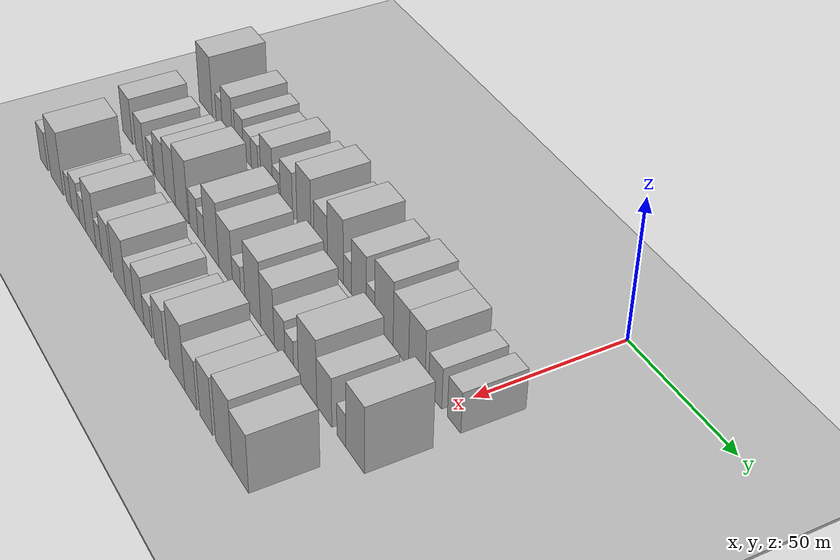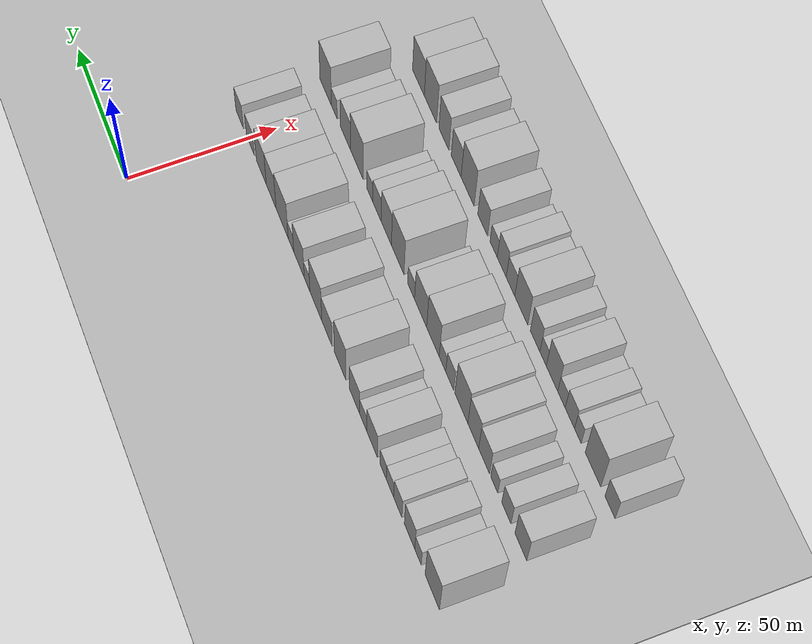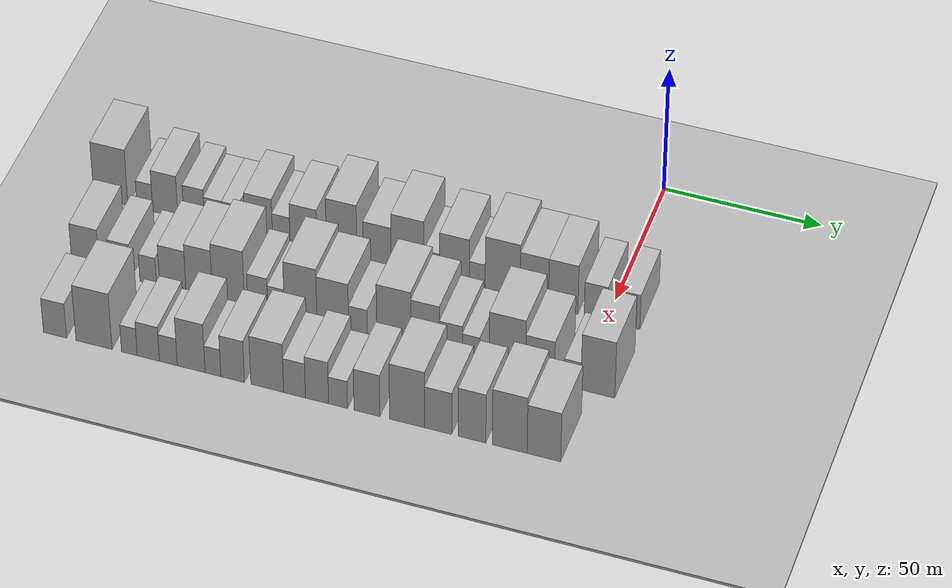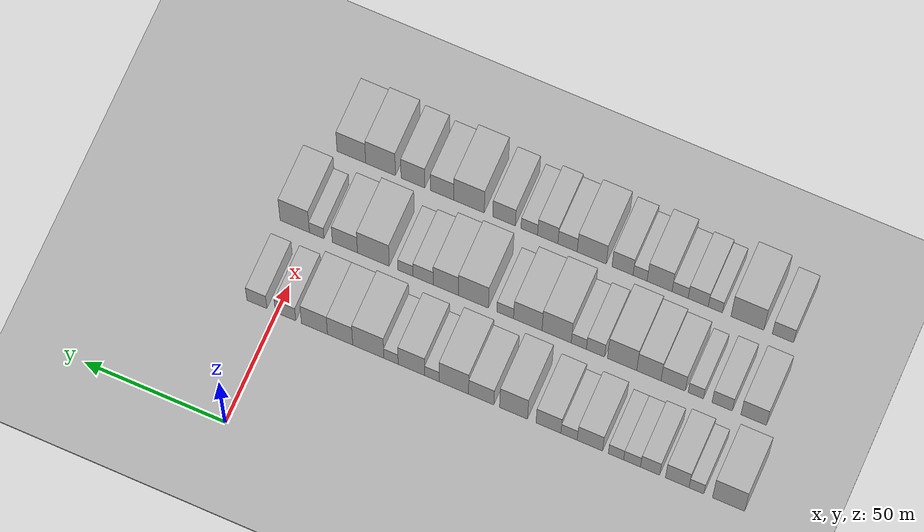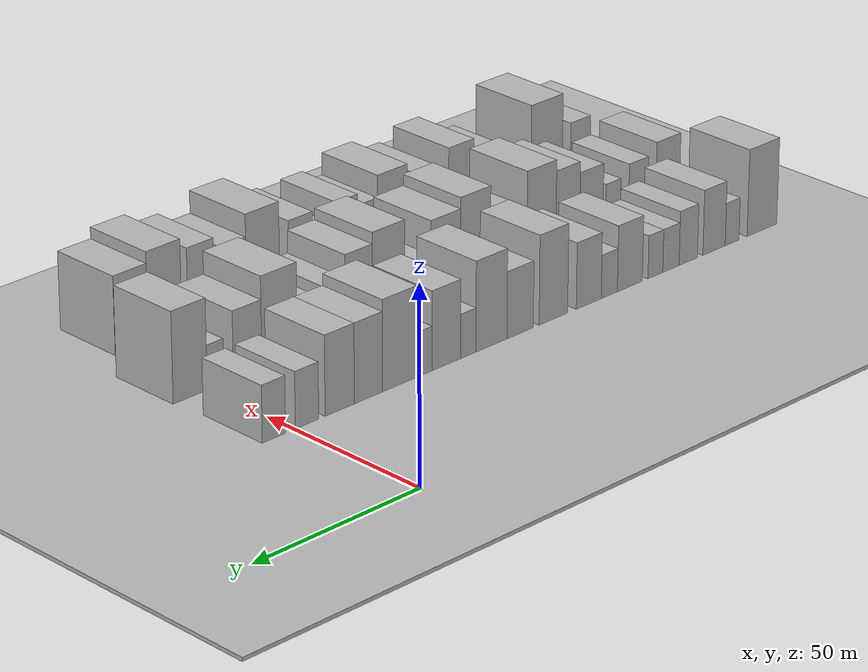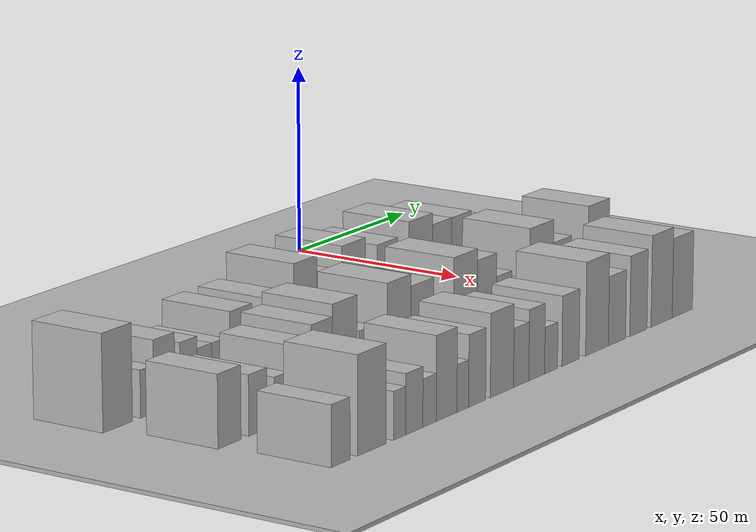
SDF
<sdf version="1.6">
 <world name="default">
  <include><name>ground_plane_1</name><uri>model://HANNAS_ground_plane</uri></include>
  <include>
   <name>ground_plane_2</name>
   <uri>model://HANNAS_ground_plane</uri>
   <pose>100 0 0  0 0 0</pose>
  </include>
  <model name="building_20">
   <static>1</static>
   <pose>50.0000 -158.7037 0 0.000000 0.000000 0.000000</pose>
   <link name="link">
    <pose>0 0 12.00 0 0 0</pose>
    <collision name="collision"><geometry><box><size>20.0000 11.1732 24.0000</size></box></geometry></collision>
    <visual name="visual">
     <cast_shadows>0</cast_shadows>
     <geometry><box><size>20.0000 11.1732 24.0000</size></box></geometry>
     <material>
      <script>
       <uri>model://HANNAS_wall/materials/scripts</uri>
       <uri>model://HANNAS_wall/materials/textures</uri>
       <name>vrc/HANNAS_wall</name>
      </script>
     </material>
    </visual>
   </link>
  </model>
  <model name="building_21">
   <static>1</static>
   <pose>50.0000 -147.5431 0 0.000000 0.000000 0.000000</pose>
   <link name="link">
    <pose>0 0 6.00 0 0 0</pose>
    <collision name="collision"><geometry><box><size>20.0000 5.1480 12.0000</size></box></geometry></collision>
    <visual name="visual">
     <cast_shadows>0</cast_shadows>
     <geometry><box><size>20.0000 5.1480 12.0000</size></box></geometry>
     <material>
      <script>
       <uri>model://HANNAS_wall/materials/scripts</uri>
       <uri>model://HANNAS_wall/materials/textures</uri>
       <name>vrc/HANNAS_wall</name>
      </script>
     </material>
    </visual>
   </link>
  </model>
  <model name="building_22">
   <static>1</static>
   <pose>50.0000 -140.8523 0 0.000000 0.000000 0.000000</pose>
   <link name="link">
    <pose>0 0 9.00 0 0 0</pose>
    <collision name="collision"><geometry><box><size>20.0000 8.2338 18.0000</size></box></geometry></collision>
    <visual name="visual">
     <cast_shadows>0</cast_shadows>
     <geometry><box><size>20.0000 8.2338 18.0000</size></box></geometry>
     <material>
      <script>
       <uri>model://HANNAS_wall/materials/scripts</uri>
       <uri>model://HANNAS_wall/materials/textures</uri>
       <name>vrc/HANNAS_wall</name>
      </script>
     </material>
    </visual>
   </link>
  </model>
  <model name="building_23">
   <static>1</static>
   <pose>50.0000 -131.4011 0 0.000000 0.000000 0.000000</pose>
   <link name="link">
    <pose>0 0 7.50 0 0 0</pose>
    <collision name="collision"><geometry><box><size>20.0000 6.6685 15.0000</size></box></geometry></collision>
    <visual name="visual">
     <cast_shadows>0</cast_shadows>
     <geometry><box><size>20.0000 6.6685 15.0000</size></box></geometry>
     <material>
      <script>
       <uri>model://HANNAS_wall/materials/scripts</uri>
       <uri>model://HANNAS_wall/materials/textures</uri>
       <name>vrc/HANNAS_wall</name>
      </script>
     </material>
    </visual>
   </link>
  </model>
  <model name="building_24">
   <static>1</static>
   <pose>50.0000 -125.1123 0 0.000000 0.000000 0.000000</pose>
   <link name="link">
    <pose>0 0 6.00 0 0 0</pose>
    <collision name="collision"><geometry><box><size>20.0000 5.9090 12.0000</size></box></geometry></collision>
    <visual name="visual">
     <cast_shadows>0</cast_shadows>
     <geometry><box><size>20.0000 5.9090 12.0000</size></box></geometry>
     <material>
      <script>
       <uri>model://HANNAS_wall/materials/scripts</uri>
       <uri>model://HANNAS_wall/materials/textures</uri>
       <name>vrc/HANNAS_wall</name>
      </script>
     </material>
    </visual>
   </link>
  </model>
  <model name="building_25">
   <static>1</static>
   <pose>50.0000 -119.4929 0 0.000000 0.000000 0.000000</pose>
   <link name="link">
    <pose>0 0 6.00 0 0 0</pose>
    <collision name="collision"><geometry><box><size>20.0000 5.3299 12.0000</size></box></geometry></collision>
    <visual name="visual">
     <cast_shadows>0</cast_shadows>
     <geometry><box><size>20.0000 5.3299 12.0000</size></box></geometry>
     <material>
      <script>
       <uri>model://HANNAS_wall/materials/scripts</uri>
       <uri>model://HANNAS_wall/materials/textures</uri>
       <name>vrc/HANNAS_wall</name>
      </script>
     </material>
    </visual>
   </link>
  </model>
  <model name="building_26">
   <static>1</static>
   <pose>50.0000 -110.3879 0 0.000000 0.000000 0.000000</pose>
   <link name="link">
    <pose>0 0 9.00 0 0 0</pose>
    <collision name="collision"><geometry><box><size>20.0000 8.8800 18.0000</size></box></geometry></collision>
    <visual name="visual">
     <cast_shadows>0</cast_shadows>
     <geometry><box><size>20.0000 8.8800 18.0000</size></box></geometry>
     <material>
      <script>
       <uri>model://HANNAS_wall/materials/scripts</uri>
       <uri>model://HANNAS_wall/materials/textures</uri>
       <name>vrc/HANNAS_wall</name>
      </script>
     </material>
    </visual>
   </link>
  </model>
  <model name="building_27">
   <static>1</static>
   <pose>50.0000 -103.1046 0 0.000000 0.000000 0.000000</pose>
   <link name="link">
    <pose>0 0 6.00 0 0 0</pose>
    <collision name="collision"><geometry><box><size>20.0000 5.6866 12.0000</size></box></geometry></collision>
    <visual name="visual">
     <cast_shadows>0</cast_shadows>
     <geometry><box><size>20.0000 5.6866 12.0000</size></box></geometry>
     <material>
      <script>
       <uri>model://HANNAS_wall/materials/scripts</uri>
       <uri>model://HANNAS_wall/materials/textures</uri>
       <name>vrc/HANNAS_wall</name>
      </script>
     </material>
    </visual>
   </link>
  </model>
  <model name="building_28">
   <static>1</static>
   <pose>50.0000 -95.8927 0 0.000000 0.000000 0.000000</pose>
   <link name="link">
    <pose>0 0 9.00 0 0 0</pose>
    <collision name="collision"><geometry><box><size>20.0000 8.7373 18.0000</size></box></geometry></collision>
    <visual name="visual">
     <cast_shadows>0</cast_shadows>
     <geometry><box><size>20.0000 8.7373 18.0000</size></box></geometry>
     <material>
      <script>
       <uri>model://HANNAS_wall/materials/scripts</uri>
       <uri>model://HANNAS_wall/materials/textures</uri>
       <name>vrc/HANNAS_wall</name>
      </script>
     </material>
    </visual>
   </link>
  </model>
  <model name="building_29">
   <static>1</static>
   <pose>50.0000 -83.6213 0 0.000000 0.000000 0.000000</pose>
   <link name="link">
    <pose>0 0 12.00 0 0 0</pose>
    <collision name="collision"><geometry><box><size>20.0000 9.8054 24.0000</size></box></geometry></collision>
    <visual name="visual">
     <cast_shadows>0</cast_shadows>
     <geometry><box><size>20.0000 9.8054 24.0000</size></box></geometry>
     <material>
      <script>
       <uri>model://HANNAS_wall/materials/scripts</uri>
       <uri>model://HANNAS_wall/materials/textures</uri>
       <name>vrc/HANNAS_wall</name>
      </script>
     </material>
    </visual>
   </link>
  </model>
  <model name="building_30">
   <static>1</static>
   <pose>50.0000 -72.2557 0 0.000000 0.000000 0.000000</pose>
   <link name="link">
    <pose>0 0 9.00 0 0 0</pose>
    <collision name="collision"><geometry><box><size>20.0000 8.9259 18.0000</size></box></geometry></collision>
    <visual name="visual">
     <cast_shadows>0</cast_shadows>
     <geometry><box><size>20.0000 8.9259 18.0000</size></box></geometry>
     <material>
      <script>
       <uri>model://HANNAS_wall/materials/scripts</uri>
       <uri>model://HANNAS_wall/materials/textures</uri>
       <name>vrc/HANNAS_wall</name>
      </script>
     </material>
    </visual>
   </link>
  </model>
  <model name="building_31">
   <static>1</static>
   <pose>50.0000 -62.6025 0 0.000000 0.000000 0.000000</pose>
   <link name="link">
    <pose>0 0 12.00 0 0 0</pose>
    <collision name="collision"><geometry><box><size>20.0000 10.3805 24.0000</size></box></geometry></collision>
    <visual name="visual">
     <cast_shadows>0</cast_shadows>
     <geometry><box><size>20.0000 10.3805 24.0000</size></box></geometry>
     <material>
      <script>
       <uri>model://HANNAS_wall/materials/scripts</uri>
       <uri>model://HANNAS_wall/materials/textures</uri>
       <name>vrc/HANNAS_wall</name>
      </script>
     </material>
    </visual>
   </link>
  </model>
  <model name="building_32">
   <static>1</static>
   <pose>50.0000 -54.8937 0 0.000000 0.000000 0.000000</pose>
   <link name="link">
    <pose>0 0 6.00 0 0 0</pose>
    <collision name="collision"><geometry><box><size>20.0000 5.0372 12.0000</size></box></geometry></collision>
    <visual name="visual">
     <cast_shadows>0</cast_shadows>
     <geometry><box><size>20.0000 5.0372 12.0000</size></box></geometry>
     <material>
      <script>
       <uri>model://HANNAS_wall/materials/scripts</uri>
       <uri>model://HANNAS_wall/materials/textures</uri>
       <name>vrc/HANNAS_wall</name>
      </script>
     </material>
    </visual>
   </link>
  </model>
  <model name="building_33">
   <static>1</static>
   <pose>50.0000 -47.6970 0 0.000000 0.000000 0.000000</pose>
   <link name="link">
    <pose>0 0 10.50 0 0 0</pose>
    <collision name="collision"><geometry><box><size>20.0000 9.3563 21.0000</size></box></geometry></collision>
    <visual name="visual">
     <cast_shadows>0</cast_shadows>
     <geometry><box><size>20.0000 9.3563 21.0000</size></box></geometry>
     <material>
      <script>
       <uri>model://HANNAS_wall/materials/scripts</uri>
       <uri>model://HANNAS_wall/materials/textures</uri>
       <name>vrc/HANNAS_wall</name>
      </script>
     </material>
    </visual>
   </link>
  </model>
  <model name="building_34">
   <static>1</static>
   <pose>50.0000 -40.5022 0 0.000000 0.000000 0.000000</pose>
   <link name="link">
    <pose>0 0 6.00 0 0 0</pose>
    <collision name="collision"><geometry><box><size>20.0000 5.0334 12.0000</size></box></geometry></collision>
    <visual name="visual">
     <cast_shadows>0</cast_shadows>
     <geometry><box><size>20.0000 5.0334 12.0000</size></box></geometry>
     <material>
      <script>
       <uri>model://HANNAS_wall/materials/scripts</uri>
       <uri>model://HANNAS_wall/materials/textures</uri>
       <name>vrc/HANNAS_wall</name>
      </script>
     </material>
    </visual>
   </link>
  </model>
  <model name="building_35">
   <static>1</static>
   <pose>50.0000 -32.4761 0 0.000000 0.000000 0.000000</pose>
   <link name="link">
    <pose>0 0 12.00 0 0 0</pose>
    <collision name="collision"><geometry><box><size>20.0000 11.0187 24.0000</size></box></geometry></collision>
    <visual name="visual">
     <cast_shadows>0</cast_shadows>
     <geometry><box><size>20.0000 11.0187 24.0000</size></box></geometry>
     <material>
      <script>
       <uri>model://HANNAS_wall/materials/scripts</uri>
       <uri>model://HANNAS_wall/materials/textures</uri>
       <name>vrc/HANNAS_wall</name>
      </script>
     </material>
    </visual>
   </link>
  </model>
  <model name="building_36">
   <static>1</static>
   <pose>50.0000 -22.5019 0 0.000000 0.000000 0.000000</pose>
   <link name="link">
    <pose>0 0 10.50 0 0 0</pose>
    <collision name="collision"><geometry><box><size>20.0000 8.9299 21.0000</size></box></geometry></collision>
    <visual name="visual">
     <cast_shadows>0</cast_shadows>
     <geometry><box><size>20.0000 8.9299 21.0000</size></box></geometry>
     <material>
      <script>
       <uri>model://HANNAS_wall/materials/scripts</uri>
       <uri>model://HANNAS_wall/materials/textures</uri>
       <name>vrc/HANNAS_wall</name>
      </script>
     </material>
    </visual>
   </link>
  </model>
  <model name="building_37">
   <static>1</static>
   <pose>50.0000 -13.4229 0 0.000000 0.000000 0.000000</pose>
   <link name="link">
    <pose>0 0 10.50 0 0 0</pose>
    <collision name="collision"><geometry><box><size>20.0000 9.2280 21.0000</size></box></geometry></collision>
    <visual name="visual">
     <cast_shadows>0</cast_shadows>
     <geometry><box><size>20.0000 9.2280 21.0000</size></box></geometry>
     <material>
      <script>
       <uri>model://HANNAS_wall/materials/scripts</uri>
       <uri>model://HANNAS_wall/materials/textures</uri>
       <name>vrc/HANNAS_wall</name>
      </script>
     </material>
    </visual>
   </link>
  </model>
  <model name="building_38">
   <static>1</static>
   <pose>50.0000 -3.1826 0 0.000000 0.000000 0.000000</pose>
   <link name="link">
    <pose>0 0 7.50 0 0 0</pose>
    <collision name="collision"><geometry><box><size>20.0000 7.2527 15.0000</size></box></geometry></collision>
    <visual name="visual">
     <cast_shadows>0</cast_shadows>
     <geometry><box><size>20.0000 7.2527 15.0000</size></box></geometry>
     <material>
      <script>
       <uri>model://HANNAS_wall/materials/scripts</uri>
       <uri>model://HANNAS_wall/materials/textures</uri>
       <name>vrc/HANNAS_wall</name>
      </script>
     </material>
    </visual>
   </link>
  </model>
  <model name="building_39">
   <static>1</static>
   <pose>50.0000 7.0037 0 0.000000 0.000000 0.000000</pose>
   <link name="link">
    <pose>0 0 7.50 0 0 0</pose>
    <collision name="collision"><geometry><box><size>20.0000 7.1198 15.0000</size></box></geometry></collision>
    <visual name="visual">
     <cast_shadows>0</cast_shadows>
     <geometry><box><size>20.0000 7.1198 15.0000</size></box></geometry>
     <material>
      <script>
       <uri>model://HANNAS_wall/materials/scripts</uri>
       <uri>model://HANNAS_wall/materials/textures</uri>
       <name>vrc/HANNAS_wall</name>
      </script>
     </material>
    </visual>
   </link>
  </model>
  <model name="building_97">
   <static>1</static>
   <pose>79.0000 -155.3173 0 0.000000 0.000000 0.000000</pose>
   <link name="link">
    <pose>0 0 9.00 0 0 0</pose>
    <collision name="collision"><geometry><box><size>20.0000 8.9202 18.0000</size></box></geometry></collision>
    <visual name="visual">
     <cast_shadows>0</cast_shadows>
     <geometry><box><size>20.0000 8.9202 18.0000</size></box></geometry>
     <material>
      <script>
       <uri>model://HANNAS_wall/materials/scripts</uri>
       <uri>model://HANNAS_wall/materials/textures</uri>
       <name>vrc/HANNAS_wall</name>
      </script>
     </material>
    </visual>
   </link>
  </model>
  <model name="building_98">
   <static>1</static>
   <pose>79.0000 -144.3145 0 0.000000 0.000000 0.000000</pose>
   <link name="link">
    <pose>0 0 7.50 0 0 0</pose>
    <collision name="collision"><geometry><box><size>20.0000 7.0855 15.0000</size></box></geometry></collision>
    <visual name="visual">
     <cast_shadows>0</cast_shadows>
     <geometry><box><size>20.0000 7.0855 15.0000</size></box></geometry>
     <material>
      <script>
       <uri>model://HANNAS_wall/materials/scripts</uri>
       <uri>model://HANNAS_wall/materials/textures</uri>
       <name>vrc/HANNAS_wall</name>
      </script>
     </material>
    </visual>
   </link>
  </model>
  <model name="building_99">
   <static>1</static>
   <pose>79.0000 -135.0802 0 0.000000 0.000000 0.000000</pose>
   <link name="link">
    <pose>0 0 6.00 0 0 0</pose>
    <collision name="collision"><geometry><box><size>20.0000 5.3830 12.0000</size></box></geometry></collision>
    <visual name="visual">
     <cast_shadows>0</cast_shadows>
     <geometry><box><size>20.0000 5.3830 12.0000</size></box></geometry>
     <material>
      <script>
       <uri>model://HANNAS_wall/materials/scripts</uri>
       <uri>model://HANNAS_wall/materials/textures</uri>
       <name>vrc/HANNAS_wall</name>
      </script>
     </material>
    </visual>
   </link>
  </model>
  <model name="building_100">
   <static>1</static>
   <pose>79.0000 -127.1526 0 0.000000 0.000000 0.000000</pose>
   <link name="link">
    <pose>0 0 9.00 0 0 0</pose>
    <collision name="collision"><geometry><box><size>20.0000 8.4723 18.0000</size></box></geometry></collision>
    <visual name="visual">
     <cast_shadows>0</cast_shadows>
     <geometry><box><size>20.0000 8.4723 18.0000</size></box></geometry>
     <material>
      <script>
       <uri>model://HANNAS_wall/materials/scripts</uri>
       <uri>model://HANNAS_wall/materials/textures</uri>
       <name>vrc/HANNAS_wall</name>
      </script>
     </material>
    </visual>
   </link>
  </model>
  <model name="building_101">
   <static>1</static>
   <pose>79.0000 -118.6565 0 0.000000 0.000000 0.000000</pose>
   <link name="link">
    <pose>0 0 10.50 0 0 0</pose>
    <collision name="collision"><geometry><box><size>20.0000 8.5198 21.0000</size></box></geometry></collision>
    <visual name="visual">
     <cast_shadows>0</cast_shadows>
     <geometry><box><size>20.0000 8.5198 21.0000</size></box></geometry>
     <material>
      <script>
       <uri>model://HANNAS_wall/materials/scripts</uri>
       <uri>model://HANNAS_wall/materials/textures</uri>
       <name>vrc/HANNAS_wall</name>
      </script>
     </material>
    </visual>
   </link>
  </model>
  <model name="building_102">
   <static>1</static>
   <pose>79.0000 -109.2549 0 0.000000 0.000000 0.000000</pose>
   <link name="link">
    <pose>0 0 12.00 0 0 0</pose>
    <collision name="collision"><geometry><box><size>20.0000 10.2833 24.0000</size></box></geometry></collision>
    <visual name="visual">
     <cast_shadows>0</cast_shadows>
     <geometry><box><size>20.0000 10.2833 24.0000</size></box></geometry>
     <material>
      <script>
       <uri>model://HANNAS_wall/materials/scripts</uri>
       <uri>model://HANNAS_wall/materials/textures</uri>
       <name>vrc/HANNAS_wall</name>
      </script>
     </material>
    </visual>
   </link>
  </model>
  <model name="building_103">
   <static>1</static>
   <pose>79.0000 -99.9209 0 0.000000 0.000000 0.000000</pose>
   <link name="link">
    <pose>0 0 7.50 0 0 0</pose>
    <collision name="collision"><geometry><box><size>20.0000 6.3848 15.0000</size></box></geometry></collision>
    <visual name="visual">
     <cast_shadows>0</cast_shadows>
     <geometry><box><size>20.0000 6.3848 15.0000</size></box></geometry>
     <material>
      <script>
       <uri>model://HANNAS_wall/materials/scripts</uri>
       <uri>model://HANNAS_wall/materials/textures</uri>
       <name>vrc/HANNAS_wall</name>
      </script>
     </material>
    </visual>
   </link>
  </model>
  <model name="building_104">
   <static>1</static>
   <pose>79.0000 -94.0706 0 0.000000 0.000000 0.000000</pose>
   <link name="link">
    <pose>0 0 6.00 0 0 0</pose>
    <collision name="collision"><geometry><box><size>20.0000 5.3159 12.0000</size></box></geometry></collision>
    <visual name="visual">
     <cast_shadows>0</cast_shadows>
     <geometry><box><size>20.0000 5.3159 12.0000</size></box></geometry>
     <material>
      <script>
       <uri>model://HANNAS_wall/materials/scripts</uri>
       <uri>model://HANNAS_wall/materials/textures</uri>
       <name>vrc/HANNAS_wall</name>
      </script>
     </material>
    </visual>
   </link>
  </model>
  <model name="building_105">
   <static>1</static>
   <pose>79.0000 -86.2566 0 0.000000 0.000000 0.000000</pose>
   <link name="link">
    <pose>0 0 12.00 0 0 0</pose>
    <collision name="collision"><geometry><box><size>20.0000 10.3121 24.0000</size></box></geometry></collision>
    <visual name="visual">
     <cast_shadows>0</cast_shadows>
     <geometry><box><size>20.0000 10.3121 24.0000</size></box></geometry>
     <material>
      <script>
       <uri>model://HANNAS_wall/materials/scripts</uri>
       <uri>model://HANNAS_wall/materials/textures</uri>
       <name>vrc/HANNAS_wall</name>
      </script>
     </material>
    </visual>
   </link>
  </model>
  <model name="building_106">
   <static>1</static>
   <pose>79.0000 -76.0798 0 0.000000 0.000000 0.000000</pose>
   <link name="link">
    <pose>0 0 10.50 0 0 0</pose>
    <collision name="collision"><geometry><box><size>20.0000 10.0414 21.0000</size></box></geometry></collision>
    <visual name="visual">
     <cast_shadows>0</cast_shadows>
     <geometry><box><size>20.0000 10.0414 21.0000</size></box></geometry>
     <material>
      <script>
       <uri>model://HANNAS_wall/materials/scripts</uri>
       <uri>model://HANNAS_wall/materials/textures</uri>
       <name>vrc/HANNAS_wall</name>
      </script>
     </material>
    </visual>
   </link>
  </model>
  <model name="building_107">
   <static>1</static>
   <pose>79.0000 -68.1272 0 0.000000 0.000000 0.000000</pose>
   <link name="link">
    <pose>0 0 6.00 0 0 0</pose>
    <collision name="collision"><geometry><box><size>20.0000 5.8639 12.0000</size></box></geometry></collision>
    <visual name="visual">
     <cast_shadows>0</cast_shadows>
     <geometry><box><size>20.0000 5.8639 12.0000</size></box></geometry>
     <material>
      <script>
       <uri>model://HANNAS_wall/materials/scripts</uri>
       <uri>model://HANNAS_wall/materials/textures</uri>
       <name>vrc/HANNAS_wall</name>
      </script>
     </material>
    </visual>
   </link>
  </model>
  <model name="building_108">
   <static>1</static>
   <pose>79.0000 -56.8489 0 0.000000 0.000000 0.000000</pose>
   <link name="link">
    <pose>0 0 12.00 0 0 0</pose>
    <collision name="collision"><geometry><box><size>20.0000 10.6927 24.0000</size></box></geometry></collision>
    <visual name="visual">
     <cast_shadows>0</cast_shadows>
     <geometry><box><size>20.0000 10.6927 24.0000</size></box></geometry>
     <material>
      <script>
       <uri>model://HANNAS_wall/materials/scripts</uri>
       <uri>model://HANNAS_wall/materials/textures</uri>
       <name>vrc/HANNAS_wall</name>
      </script>
     </material>
    </visual>
   </link>
  </model>
  <model name="building_109">
   <static>1</static>
   <pose>79.0000 -47.0554 0 0.000000 0.000000 0.000000</pose>
   <link name="link">
    <pose>0 0 10.50 0 0 0</pose>
    <collision name="collision"><geometry><box><size>20.0000 8.8944 21.0000</size></box></geometry></collision>
    <visual name="visual">
     <cast_shadows>0</cast_shadows>
     <geometry><box><size>20.0000 8.8944 21.0000</size></box></geometry>
     <material>
      <script>
       <uri>model://HANNAS_wall/materials/scripts</uri>
       <uri>model://HANNAS_wall/materials/textures</uri>
       <name>vrc/HANNAS_wall</name>
      </script>
     </material>
    </visual>
   </link>
  </model>
  <model name="building_110">
   <static>1</static>
   <pose>79.0000 -39.0380 0 0.000000 0.000000 0.000000</pose>
   <link name="link">
    <pose>0 0 7.50 0 0 0</pose>
    <collision name="collision"><geometry><box><size>20.0000 7.1403 15.0000</size></box></geometry></collision>
    <visual name="visual">
     <cast_shadows>0</cast_shadows>
     <geometry><box><size>20.0000 7.1403 15.0000</size></box></geometry>
     <material>
      <script>
       <uri>model://HANNAS_wall/materials/scripts</uri>
       <uri>model://HANNAS_wall/materials/textures</uri>
       <name>vrc/HANNAS_wall</name>
      </script>
     </material>
    </visual>
   </link>
  </model>
  <model name="building_111">
   <static>1</static>
   <pose>79.0000 -32.7608 0 0.000000 0.000000 0.000000</pose>
   <link name="link">
    <pose>0 0 6.00 0 0 0</pose>
    <collision name="collision"><geometry><box><size>20.0000 5.4142 12.0000</size></box></geometry></collision>
    <visual name="visual">
     <cast_shadows>0</cast_shadows>
     <geometry><box><size>20.0000 5.4142 12.0000</size></box></geometry>
     <material>
      <script>
       <uri>model://HANNAS_wall/materials/scripts</uri>
       <uri>model://HANNAS_wall/materials/textures</uri>
       <name>vrc/HANNAS_wall</name>
      </script>
     </material>
    </visual>
   </link>
  </model>
  <model name="building_112">
   <static>1</static>
   <pose>79.0000 -21.4126 0 0.000000 0.000000 0.000000</pose>
   <link name="link">
    <pose>0 0 12.00 0 0 0</pose>
    <collision name="collision"><geometry><box><size>20.0000 11.2821 24.0000</size></box></geometry></collision>
    <visual name="visual">
     <cast_shadows>0</cast_shadows>
     <geometry><box><size>20.0000 11.2821 24.0000</size></box></geometry>
     <material>
      <script>
       <uri>model://HANNAS_wall/materials/scripts</uri>
       <uri>model://HANNAS_wall/materials/textures</uri>
       <name>vrc/HANNAS_wall</name>
      </script>
     </material>
    </visual>
   </link>
  </model>
  <model name="building_113">
   <static>1</static>
   <pose>79.0000 -11.2990 0 0.000000 0.000000 0.000000</pose>
   <link name="link">
    <pose>0 0 9.00 0 0 0</pose>
    <collision name="collision"><geometry><box><size>20.0000 8.9452 18.0000</size></box></geometry></collision>
    <visual name="visual">
     <cast_shadows>0</cast_shadows>
     <geometry><box><size>20.0000 8.9452 18.0000</size></box></geometry>
     <material>
      <script>
       <uri>model://HANNAS_wall/materials/scripts</uri>
       <uri>model://HANNAS_wall/materials/textures</uri>
       <name>vrc/HANNAS_wall</name>
      </script>
     </material>
    </visual>
   </link>
  </model>
  <model name="building_114">
   <static>1</static>
   <pose>79.0000 -1.2502 0 0.000000 0.000000 0.000000</pose>
   <link name="link">
    <pose>0 0 6.00 0 0 0</pose>
    <collision name="collision"><geometry><box><size>20.0000 5.1523 12.0000</size></box></geometry></collision>
    <visual name="visual">
     <cast_shadows>0</cast_shadows>
     <geometry><box><size>20.0000 5.1523 12.0000</size></box></geometry>
     <material>
      <script>
       <uri>model://HANNAS_wall/materials/scripts</uri>
       <uri>model://HANNAS_wall/materials/textures</uri>
       <name>vrc/HANNAS_wall</name>
      </script>
     </material>
    </visual>
   </link>
  </model>
  <model name="building_115">
   <static>1</static>
   <pose>79.0000 6.5574 0 0.000000 0.000000 0.000000</pose>
   <link name="link">
    <pose>0 0 12.00 0 0 0</pose>
    <collision name="collision"><geometry><box><size>20.0000 10.4629 24.0000</size></box></geometry></collision>
    <visual name="visual">
     <cast_shadows>0</cast_shadows>
     <geometry><box><size>20.0000 10.4629 24.0000</size></box></geometry>
     <material>
      <script>
       <uri>model://HANNAS_wall/materials/scripts</uri>
       <uri>model://HANNAS_wall/materials/textures</uri>
       <name>vrc/HANNAS_wall</name>
      </script>
     </material>
    </visual>
   </link>
  </model>
  <model name="building_174">
   <static>1</static>
   <pose>108.0000 -153.4604 0 0.000000 0.000000 0.000000</pose>
   <link name="link">
    <pose>0 0 7.50 0 0 0</pose>
    <collision name="collision"><geometry><box><size>20.0000 7.4106 15.0000</size></box></geometry></collision>
    <visual name="visual">
     <cast_shadows>0</cast_shadows>
     <geometry><box><size>20.0000 7.4106 15.0000</size></box></geometry>
     <material>
      <script>
       <uri>model://HANNAS_wall/materials/scripts</uri>
       <uri>model://HANNAS_wall/materials/textures</uri>
       <name>vrc/HANNAS_wall</name>
      </script>
     </material>
    </visual>
   </link>
  </model>
  <model name="building_175">
   <static>1</static>
   <pose>108.0000 -140.9903 0 0.000000 0.000000 0.000000</pose>
   <link name="link">
    <pose>0 0 12.00 0 0 0</pose>
    <collision name="collision"><geometry><box><size>20.0000 11.5295 24.0000</size></box></geometry></collision>
    <visual name="visual">
     <cast_shadows>0</cast_shadows>
     <geometry><box><size>20.0000 11.5295 24.0000</size></box></geometry>
     <material>
      <script>
       <uri>model://HANNAS_wall/materials/scripts</uri>
       <uri>model://HANNAS_wall/materials/textures</uri>
       <name>vrc/HANNAS_wall</name>
      </script>
     </material>
    </visual>
   </link>
  </model>
  <model name="building_176">
   <static>1</static>
   <pose>108.0000 -129.7305 0 0.000000 0.000000 0.000000</pose>
   <link name="link">
    <pose>0 0 6.00 0 0 0</pose>
    <collision name="collision"><geometry><box><size>20.0000 4.9901 12.0000</size></box></geometry></collision>
    <visual name="visual">
     <cast_shadows>0</cast_shadows>
     <geometry><box><size>20.0000 4.9901 12.0000</size></box></geometry>
     <material>
      <script>
       <uri>model://HANNAS_wall/materials/scripts</uri>
       <uri>model://HANNAS_wall/materials/textures</uri>
       <name>vrc/HANNAS_wall</name>
      </script>
     </material>
    </visual>
   </link>
  </model>
  <model name="building_177">
   <static>1</static>
   <pose>108.0000 -123.7099 0 0.000000 0.000000 0.000000</pose>
   <link name="link">
    <pose>0 0 7.50 0 0 0</pose>
    <collision name="collision"><geometry><box><size>20.0000 7.0512 15.0000</size></box></geometry></collision>
    <visual name="visual">
     <cast_shadows>0</cast_shadows>
     <geometry><box><size>20.0000 7.0512 15.0000</size></box></geometry>
     <material>
      <script>
       <uri>model://HANNAS_wall/materials/scripts</uri>
       <uri>model://HANNAS_wall/materials/textures</uri>
       <name>vrc/HANNAS_wall</name>
      </script>
     </material>
    </visual>
   </link>
  </model>
  <model name="building_178">
   <static>1</static>
   <pose>108.0000 -117.3598 0 0.000000 0.000000 0.000000</pose>
   <link name="link">
    <pose>0 0 6.00 0 0 0</pose>
    <collision name="collision"><geometry><box><size>20.0000 5.6490 12.0000</size></box></geometry></collision>
    <visual name="visual">
     <cast_shadows>0</cast_shadows>
     <geometry><box><size>20.0000 5.6490 12.0000</size></box></geometry>
     <material>
      <script>
       <uri>model://HANNAS_wall/materials/scripts</uri>
       <uri>model://HANNAS_wall/materials/textures</uri>
       <name>vrc/HANNAS_wall</name>
      </script>
     </material>
    </visual>
   </link>
  </model>
  <model name="building_179">
   <static>1</static>
   <pose>108.0000 -110.1325 0 0.000000 0.000000 0.000000</pose>
   <link name="link">
    <pose>0 0 10.50 0 0 0</pose>
    <collision name="collision"><geometry><box><size>20.0000 8.8055 21.0000</size></box></geometry></collision>
    <visual name="visual">
     <cast_shadows>0</cast_shadows>
     <geometry><box><size>20.0000 8.8055 21.0000</size></box></geometry>
     <material>
      <script>
       <uri>model://HANNAS_wall/materials/scripts</uri>
       <uri>model://HANNAS_wall/materials/textures</uri>
       <name>vrc/HANNAS_wall</name>
      </script>
     </material>
    </visual>
   </link>
  </model>
  <model name="building_180">
   <static>1</static>
   <pose>108.0000 -103.2528 0 0.000000 0.000000 0.000000</pose>
   <link name="link">
    <pose>0 0 6.00 0 0 0</pose>
    <collision name="collision"><geometry><box><size>20.0000 4.9540 12.0000</size></box></geometry></collision>
    <visual name="visual">
     <cast_shadows>0</cast_shadows>
     <geometry><box><size>20.0000 4.9540 12.0000</size></box></geometry>
     <material>
      <script>
       <uri>model://HANNAS_wall/materials/scripts</uri>
       <uri>model://HANNAS_wall/materials/textures</uri>
       <name>vrc/HANNAS_wall</name>
      </script>
     </material>
    </visual>
   </link>
  </model>
  <model name="building_181">
   <static>1</static>
   <pose>108.0000 -97.0502 0 0.000000 0.000000 0.000000</pose>
   <link name="link">
    <pose>0 0 9.00 0 0 0</pose>
    <collision name="collision"><geometry><box><size>20.0000 7.4512 18.0000</size></box></geometry></collision>
    <visual name="visual">
     <cast_shadows>0</cast_shadows>
     <geometry><box><size>20.0000 7.4512 18.0000</size></box></geometry>
     <material>
      <script>
       <uri>model://HANNAS_wall/materials/scripts</uri>
       <uri>model://HANNAS_wall/materials/textures</uri>
       <name>vrc/HANNAS_wall</name>
      </script>
     </material>
    </visual>
   </link>
  </model>
  <model name="building_182">
   <static>1</static>
   <pose>108.0000 -86.1838 0 0.000000 0.000000 0.000000</pose>
   <link name="link">
    <pose>0 0 10.50 0 0 0</pose>
    <collision name="collision"><geometry><box><size>20.0000 10.2817 21.0000</size></box></geometry></collision>
    <visual name="visual">
     <cast_shadows>0</cast_shadows>
     <geometry><box><size>20.0000 10.2817 21.0000</size></box></geometry>
     <material>
      <script>
       <uri>model://HANNAS_wall/materials/scripts</uri>
       <uri>model://HANNAS_wall/materials/textures</uri>
       <name>vrc/HANNAS_wall</name>
      </script>
     </material>
    </visual>
   </link>
  </model>
  <model name="building_183">
   <static>1</static>
   <pose>108.0000 -77.6316 0 0.000000 0.000000 0.000000</pose>
   <link name="link">
    <pose>0 0 7.50 0 0 0</pose>
    <collision name="collision"><geometry><box><size>20.0000 6.8226 15.0000</size></box></geometry></collision>
    <visual name="visual">
     <cast_shadows>0</cast_shadows>
     <geometry><box><size>20.0000 6.8226 15.0000</size></box></geometry>
     <material>
      <script>
       <uri>model://HANNAS_wall/materials/scripts</uri>
       <uri>model://HANNAS_wall/materials/textures</uri>
       <name>vrc/HANNAS_wall</name>
      </script>
     </material>
    </visual>
   </link>
  </model>
  <model name="building_184">
   <static>1</static>
   <pose>108.0000 -70.6138 0 0.000000 0.000000 0.000000</pose>
   <link name="link">
    <pose>0 0 9.00 0 0 0</pose>
    <collision name="collision"><geometry><box><size>20.0000 7.2130 18.0000</size></box></geometry></collision>
    <visual name="visual">
     <cast_shadows>0</cast_shadows>
     <geometry><box><size>20.0000 7.2130 18.0000</size></box></geometry>
     <material>
      <script>
       <uri>model://HANNAS_wall/materials/scripts</uri>
       <uri>model://HANNAS_wall/materials/textures</uri>
       <name>vrc/HANNAS_wall</name>
      </script>
     </material>
    </visual>
   </link>
  </model>
  <model name="building_185">
   <static>1</static>
   <pose>108.0000 -64.0645 0 0.000000 0.000000 0.000000</pose>
   <link name="link">
    <pose>0 0 6.00 0 0 0</pose>
    <collision name="collision"><geometry><box><size>20.0000 5.8855 12.0000</size></box></geometry></collision>
    <visual name="visual">
     <cast_shadows>0</cast_shadows>
     <geometry><box><size>20.0000 5.8855 12.0000</size></box></geometry>
     <material>
      <script>
       <uri>model://HANNAS_wall/materials/scripts</uri>
       <uri>model://HANNAS_wall/materials/textures</uri>
       <name>vrc/HANNAS_wall</name>
      </script>
     </material>
    </visual>
   </link>
  </model>
  <model name="building_186">
   <static>1</static>
   <pose>108.0000 -55.1009 0 0.000000 0.000000 0.000000</pose>
   <link name="link">
    <pose>0 0 9.00 0 0 0</pose>
    <collision name="collision"><geometry><box><size>20.0000 8.0418 18.0000</size></box></geometry></collision>
    <visual name="visual">
     <cast_shadows>0</cast_shadows>
     <geometry><box><size>20.0000 8.0418 18.0000</size></box></geometry>
     <material>
      <script>
       <uri>model://HANNAS_wall/materials/scripts</uri>
       <uri>model://HANNAS_wall/materials/textures</uri>
       <name>vrc/HANNAS_wall</name>
      </script>
     </material>
    </visual>
   </link>
  </model>
  <model name="building_187">
   <static>1</static>
   <pose>108.0000 -42.6435 0 0.000000 0.000000 0.000000</pose>
   <link name="link">
    <pose>0 0 12.00 0 0 0</pose>
    <collision name="collision"><geometry><box><size>20.0000 10.8730 24.0000</size></box></geometry></collision>
    <visual name="visual">
     <cast_shadows>0</cast_shadows>
     <geometry><box><size>20.0000 10.8730 24.0000</size></box></geometry>
     <material>
      <script>
       <uri>model://HANNAS_wall/materials/scripts</uri>
       <uri>model://HANNAS_wall/materials/textures</uri>
       <name>vrc/HANNAS_wall</name>
      </script>
     </material>
    </visual>
   </link>
  </model>
  <model name="building_188">
   <static>1</static>
   <pose>108.0000 -33.0684 0 0.000000 0.000000 0.000000</pose>
   <link name="link">
    <pose>0 0 9.00 0 0 0</pose>
    <collision name="collision"><geometry><box><size>20.0000 8.2771 18.0000</size></box></geometry></collision>
    <visual name="visual">
     <cast_shadows>0</cast_shadows>
     <geometry><box><size>20.0000 8.2771 18.0000</size></box></geometry>
     <material>
      <script>
       <uri>model://HANNAS_wall/materials/scripts</uri>
       <uri>model://HANNAS_wall/materials/textures</uri>
       <name>vrc/HANNAS_wall</name>
      </script>
     </material>
    </visual>
   </link>
  </model>
  <model name="building_189">
   <static>1</static>
   <pose>108.0000 -22.6905 0 0.000000 0.000000 0.000000</pose>
   <link name="link">
    <pose>0 0 10.50 0 0 0</pose>
    <collision name="collision"><geometry><box><size>20.0000 8.4788 21.0000</size></box></geometry></collision>
    <visual name="visual">
     <cast_shadows>0</cast_shadows>
     <geometry><box><size>20.0000 8.4788 21.0000</size></box></geometry>
     <material>
      <script>
       <uri>model://HANNAS_wall/materials/scripts</uri>
       <uri>model://HANNAS_wall/materials/textures</uri>
       <name>vrc/HANNAS_wall</name>
      </script>
     </material>
    </visual>
   </link>
  </model>
  <model name="building_190">
   <static>1</static>
   <pose>108.0000 -11.1431 0 0.000000 0.000000 0.000000</pose>
   <link name="link">
    <pose>0 0 12.00 0 0 0</pose>
    <collision name="collision"><geometry><box><size>20.0000 10.6160 24.0000</size></box></geometry></collision>
    <visual name="visual">
     <cast_shadows>0</cast_shadows>
     <geometry><box><size>20.0000 10.6160 24.0000</size></box></geometry>
     <material>
      <script>
       <uri>model://HANNAS_wall/materials/scripts</uri>
       <uri>model://HANNAS_wall/materials/textures</uri>
       <name>vrc/HANNAS_wall</name>
      </script>
     </material>
    </visual>
   </link>
  </model>
  <model name="building_191">
   <static>1</static>
   <pose>108.0000 -0.7106 0 0.000000 0.000000 0.000000</pose>
   <link name="link">
    <pose>0 0 10.50 0 0 0</pose>
    <collision name="collision"><geometry><box><size>20.0000 10.2488 21.0000</size></box></geometry></collision>
    <visual name="visual">
     <cast_shadows>0</cast_shadows>
     <geometry><box><size>20.0000 10.2488 21.0000</size></box></geometry>
     <material>
      <script>
       <uri>model://HANNAS_wall/materials/scripts</uri>
       <uri>model://HANNAS_wall/materials/textures</uri>
       <name>vrc/HANNAS_wall</name>
      </script>
     </material>
    </visual>
   </link>
  </model>
 </world>
</sdf>
